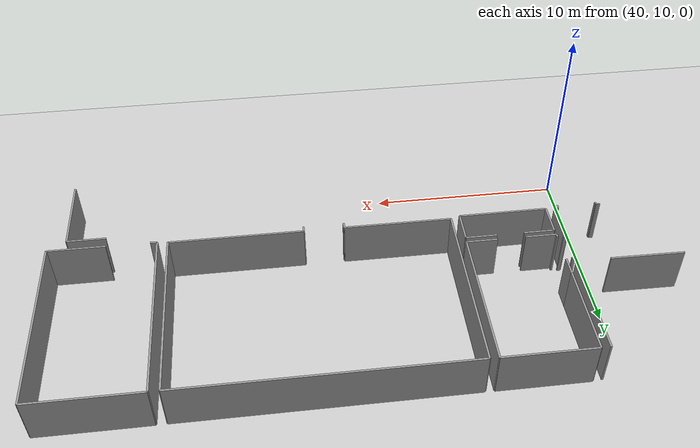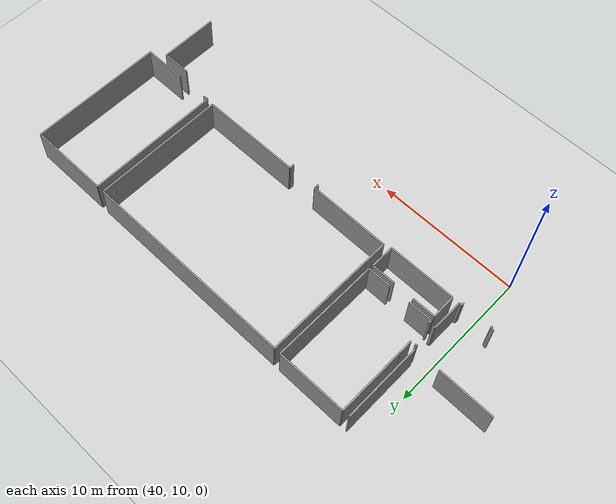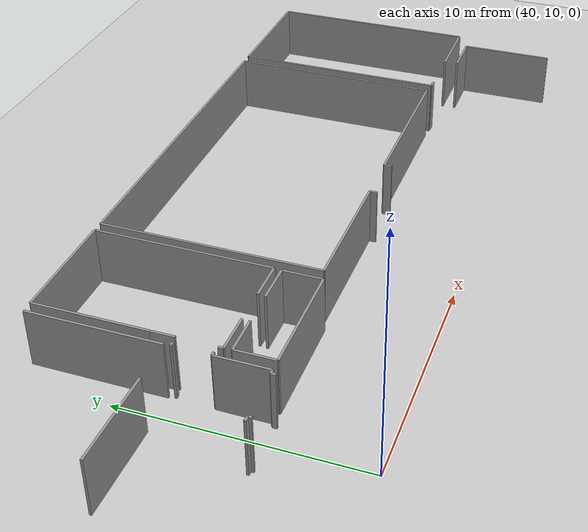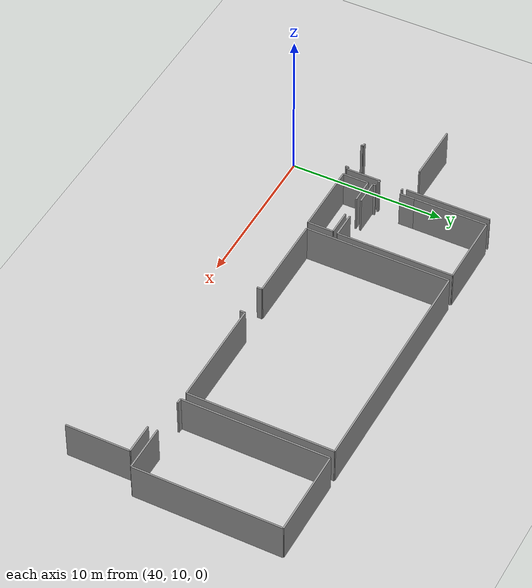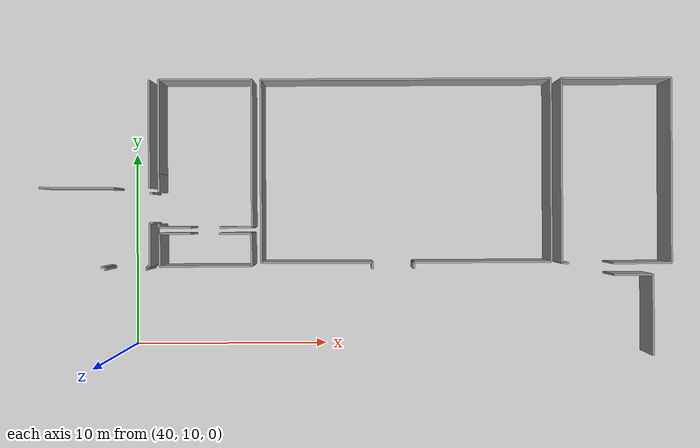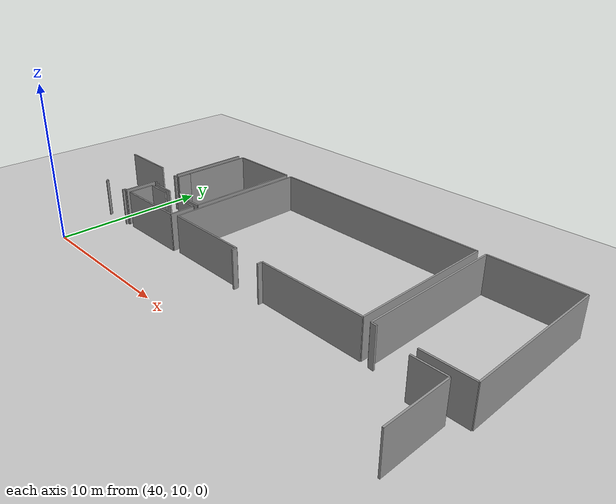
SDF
<sdf version="1.6">
 <world name="default">
  <model name="ground_plane">
   <static>1</static>
   <link name="link">
    <collision name="collision">
     <geometry><plane><normal>0 0 1</normal><size>100 100</size></plane></geometry>
     <surface><friction><ode><mu>100</mu><mu2>50</mu2></ode></friction></surface>
    </collision>
    <visual name="visual">
     <cast_shadows>0</cast_shadows>
     <geometry><plane><normal>0 0 1</normal><size>100 100</size></plane></geometry>
     <material>
      <script><uri>file://media/materials/scripts/gazebo.material</uri><name>Gazebo/Grey</name></script>
     </material>
    </visual>
   </link>
  </model>
  <model name="0510032194_A_40_1_102">
   <static>1</static>
   <link name="Wall_140">
    <collision name="Wall_140_Collision">
     <geometry><box><size>0.159793552324 0.1 2.5</size></box></geometry>
     <pose>0.0798967761619 0 1.25 0 0 0</pose>
    </collision>
    <visual name="Wall_140_Visual">
     <pose>0.0798967761619 0 1.25 0 0 0</pose>
     <geometry><box><size>0.159793552324 0.1 2.5</size></box></geometry>
     <material>
      <script><uri>file://media/materials/scripts/gazebo.material</uri><name>Gazebo/Grey</name></script>
      <ambient>1 1 1 1</ambient>
     </material>
    </visual>
    <pose>108.805044239 -5.91159869826 0 0 0 0.0</pose>
   </link>
   <link name="Wall_141">
    <collision name="Wall_141_Collision">
     <geometry><box><size>0.168183667243 0.1 2.5</size></box></geometry>
     <pose>0.0840918336215 0 1.25 0 0 0</pose>
    </collision>
    <visual name="Wall_141_Visual">
     <pose>0.0840918336215 0 1.25 0 0 0</pose>
     <geometry><box><size>0.168183667243 0.1 2.5</size></box></geometry>
     <material>
      <script><uri>file://media/materials/scripts/gazebo.material</uri><name>Gazebo/Grey</name></script>
      <ambient>1 1 1 1</ambient>
     </material>
    </visual>
    <pose>108.964837791 -7.4520746466 0 0 0 3.14159265359</pose>
   </link>
   <link name="Wall_142">
    <collision name="Wall_142_Collision">
     <geometry><box><size>2.20825282213 0.1 2.5</size></box></geometry>
     <pose>1.10412641106 0 1.25 0 0 0</pose>
    </collision>
    <visual name="Wall_142_Visual">
     <pose>1.10412641106 0 1.25 0 0 0</pose>
     <geometry><box><size>2.20825282213 0.1 2.5</size></box></geometry>
     <material>
      <script><uri>file://media/materials/scripts/gazebo.material</uri><name>Gazebo/Grey</name></script>
      <ambient>1 1 1 1</ambient>
     </material>
    </visual>
    <pose>108.796654124 -7.4520746466 0 0 0 -1.57079632679</pose>
   </link>
   <link name="Wall_143">
    <collision name="Wall_143_Collision">
     <geometry><box><size>0.172632970609 0.1 2.5</size></box></geometry>
     <pose>0.0863164853046 0 1.25 0 0 0</pose>
    </collision>
    <visual name="Wall_143_Visual">
     <pose>0.0863164853046 0 1.25 0 0 0</pose>
     <geometry><box><size>0.172632970609 0.1 2.5</size></box></geometry>
     <material>
      <script><uri>file://media/materials/scripts/gazebo.material</uri><name>Gazebo/Grey</name></script>
      <ambient>1 1 1 1</ambient>
     </material>
    </visual>
    <pose>108.796654124 -9.66032746873 0 0 0 3.14159265359</pose>
   </link>
   <link name="Wall_144">
    <collision name="Wall_144_Collision">
     <geometry><box><size>0.192209905421 0.1 2.5</size></box></geometry>
     <pose>0.0961049527103 0 1.25 0 0 0</pose>
    </collision>
    <visual name="Wall_144_Visual">
     <pose>0.0961049527103 0 1.25 0 0 0</pose>
     <geometry><box><size>0.192209905421 0.1 2.5</size></box></geometry>
     <material>
      <script><uri>file://media/materials/scripts/gazebo.material</uri><name>Gazebo/Grey</name></script>
      <ambient>1 1 1 1</ambient>
     </material>
    </visual>
    <pose>108.624021153 -9.66032746873 0 0 0 -1.57079632679</pose>
   </link>
   <link name="Wall_145">
    <collision name="Wall_145_Collision">
     <geometry><box><size>0.140852232279 0.1 2.5</size></box></geometry>
     <pose>0.0704261161395 0 1.25 0 0 0</pose>
    </collision>
    <visual name="Wall_145_Visual">
     <pose>0.0704261161395 0 1.25 0 0 0</pose>
     <geometry><box><size>0.140852232279 0.1 2.5</size></box></geometry>
     <material>
      <script><uri>file://media/materials/scripts/gazebo.material</uri><name>Gazebo/Grey</name></script>
      <ambient>1 1 1 1</ambient>
     </material>
    </visual>
    <pose>106.518865046 -9.85253737415 0 0 0 1.57079632679</pose>
   </link>
   <link name="Wall_146">
    <collision name="Wall_146_Collision">
     <geometry><box><size>0.214822370318 0.1 2.5</size></box></geometry>
     <pose>0.107411185159 0 1.25 0 0 0</pose>
    </collision>
    <visual name="Wall_146_Visual">
     <pose>0.107411185159 0 1.25 0 0 0</pose>
     <geometry><box><size>0.214822370318 0.1 2.5</size></box></geometry>
     <material>
      <script><uri>file://media/materials/scripts/gazebo.material</uri><name>Gazebo/Grey</name></script>
      <ambient>1 1 1 1</ambient>
     </material>
    </visual>
    <pose>106.518865046 -9.71168514187 0 0 0 3.03903877093</pose>
   </link>
   <link name="Wall_147">
    <collision name="Wall_147_Collision">
     <geometry><box><size>9.33692667548 0.1 2.5</size></box></geometry>
     <pose>4.66846333774 0 1.25 0 0 0</pose>
    </collision>
    <visual name="Wall_147_Visual">
     <pose>4.66846333774 0 1.25 0 0 0</pose>
     <geometry><box><size>9.33692667548 0.1 2.5</size></box></geometry>
     <material>
      <script><uri>file://media/materials/scripts/gazebo.material</uri><name>Gazebo/Grey</name></script>
      <ambient>1 1 1 1</ambient>
     </material>
    </visual>
    <pose>114.472821113 -9.49405064578 0 0 0 1.57079632679</pose>
   </link>
   <link name="Wall_148">
    <collision name="Wall_148_Collision">
     <geometry><box><size>14.798382996 0.1 2.5</size></box></geometry>
     <pose>7.39919149802 0 1.25 0 0 0</pose>
    </collision>
    <visual name="Wall_148_Visual">
     <pose>7.39919149802 0 1.25 0 0 0</pose>
     <geometry><box><size>14.798382996 0.1 2.5</size></box></geometry>
     <material>
      <script><uri>file://media/materials/scripts/gazebo.material</uri><name>Gazebo/Grey</name></script>
      <ambient>1 1 1 1</ambient>
     </material>
    </visual>
    <pose>114.472821113 -0.157123970304 0 0 0 0.0</pose>
   </link>
   <link name="Wall_149">
    <collision name="Wall_149_Collision">
     <geometry><box><size>9.33476558527 0.1 2.5</size></box></geometry>
     <pose>4.66738279264 0 1.25 0 0 0</pose>
    </collision>
    <visual name="Wall_149_Visual">
     <pose>4.66738279264 0 1.25 0 0 0</pose>
     <geometry><box><size>9.33476558527 0.1 2.5</size></box></geometry>
     <material>
      <script><uri>file://media/materials/scripts/gazebo.material</uri><name>Gazebo/Grey</name></script>
      <ambient>1 1 1 1</ambient>
     </material>
    </visual>
    <pose>129.271204109 -0.157123970304 0 0 0 -1.57079632679</pose>
   </link>
   <link name="Wall_150">
    <collision name="Wall_150_Collision">
     <geometry><box><size>7.00828841656 0.1 2.5</size></box></geometry>
     <pose>3.50414420828 0 1.25 0 0 0</pose>
    </collision>
    <visual name="Wall_150_Visual">
     <pose>3.50414420828 0 1.25 0 0 0</pose>
     <geometry><box><size>7.00828841656 0.1 2.5</size></box></geometry>
     <material>
      <script><uri>file://media/materials/scripts/gazebo.material</uri><name>Gazebo/Grey</name></script>
      <ambient>1 1 1 1</ambient>
     </material>
    </visual>
    <pose>129.271204109 -9.49188955558 0 0 0 3.14159265359</pose>
   </link>
   <link name="Wall_151">
    <collision name="Wall_151_Collision">
     <geometry><box><size>0.339291162412 0.1 2.5</size></box></geometry>
     <pose>0.169645581206 0 1.25 0 0 0</pose>
    </collision>
    <visual name="Wall_151_Visual">
     <pose>0.169645581206 0 1.25 0 0 0</pose>
     <geometry><box><size>0.339291162412 0.1 2.5</size></box></geometry>
     <material>
      <script><uri>file://media/materials/scripts/gazebo.material</uri><name>Gazebo/Grey</name></script>
      <ambient>1 1 1 1</ambient>
     </material>
    </visual>
    <pose>122.262915692 -9.49188955558 0 0 0 -1.57079632679</pose>
   </link>
   <link name="Wall_152">
    <collision name="Wall_152_Collision">
     <geometry><box><size>0.324417776874 0.1 2.5</size></box></geometry>
     <pose>0.162208888437 0 1.25 0 0 0</pose>
    </collision>
    <visual name="Wall_152_Visual">
     <pose>0.162208888437 0 1.25 0 0 0</pose>
     <geometry><box><size>0.324417776874 0.1 2.5</size></box></geometry>
     <material>
      <script><uri>file://media/materials/scripts/gazebo.material</uri><name>Gazebo/Grey</name></script>
      <ambient>1 1 1 1</ambient>
     </material>
    </visual>
    <pose>120.142504831 -9.83118071799 0 0 0 1.57079632679</pose>
   </link>
   <link name="Wall_153">
    <collision name="Wall_153_Collision">
     <geometry><box><size>5.66969796953 0.1 2.5</size></box></geometry>
     <pose>2.83484898476 0 1.25 0 0 0</pose>
    </collision>
    <visual name="Wall_153_Visual">
     <pose>2.83484898476 0 1.25 0 0 0</pose>
     <geometry><box><size>5.66969796953 0.1 2.5</size></box></geometry>
     <material>
      <script><uri>file://media/materials/scripts/gazebo.material</uri><name>Gazebo/Grey</name></script>
      <ambient>1 1 1 1</ambient>
     </material>
    </visual>
    <pose>120.142504831 -9.50676294112 0 0 0 3.13935050488</pose>
   </link>
   <link name="Wall_154">
    <collision name="Wall_154_Collision">
     <geometry><box><size>9.40506457846 0.1 2.5</size></box></geometry>
     <pose>4.70253228923 0 1.25 0 0 0</pose>
    </collision>
    <visual name="Wall_154_Visual">
     <pose>4.70253228923 0 1.25 0 0 0</pose>
     <geometry><box><size>9.40506457846 0.1 2.5</size></box></geometry>
     <material>
      <script><uri>file://media/materials/scripts/gazebo.material</uri><name>Gazebo/Grey</name></script>
      <ambient>1 1 1 1</ambient>
     </material>
    </visual>
    <pose>129.810205431 -9.55723075358 0 0 0 1.57079632679</pose>
   </link>
   <link name="Wall_155">
    <collision name="Wall_155_Collision">
     <geometry><box><size>5.59213871657 0.1 2.5</size></box></geometry>
     <pose>2.79606935828 0 1.25 0 0 0</pose>
    </collision>
    <visual name="Wall_155_Visual">
     <pose>2.79606935828 0 1.25 0 0 0</pose>
     <geometry><box><size>5.59213871657 0.1 2.5</size></box></geometry>
     <material>
      <script><uri>file://media/materials/scripts/gazebo.material</uri><name>Gazebo/Grey</name></script>
      <ambient>1 1 1 1</ambient>
     </material>
    </visual>
    <pose>129.810205431 -0.152166175125 0 0 0 0.0</pose>
   </link>
   <link name="Wall_156">
    <collision name="Wall_156_Collision">
     <geometry><box><size>9.4275653412 0.1 2.5</size></box></geometry>
     <pose>4.7137826706 0 1.25 0 0 0</pose>
    </collision>
    <visual name="Wall_156_Visual">
     <pose>4.7137826706 0 1.25 0 0 0</pose>
     <geometry><box><size>9.4275653412 0.1 2.5</size></box></geometry>
     <material>
      <script><uri>file://media/materials/scripts/gazebo.material</uri><name>Gazebo/Grey</name></script>
      <ambient>1 1 1 1</ambient>
     </material>
    </visual>
    <pose>135.402344147 -0.152166175125 0 0 0 -1.57079632679</pose>
   </link>
   <link name="Wall_157">
    <collision name="Wall_157_Collision">
     <geometry><box><size>2.9861181735 0.1 2.5</size></box></geometry>
     <pose>1.49305908675 0 1.25 0 0 0</pose>
    </collision>
    <visual name="Wall_157_Visual">
     <pose>1.49305908675 0 1.25 0 0 0</pose>
     <geometry><box><size>2.9861181735 0.1 2.5</size></box></geometry>
     <material>
      <script><uri>file://media/materials/scripts/gazebo.material</uri><name>Gazebo/Grey</name></script>
      <ambient>1 1 1 1</ambient>
     </material>
    </visual>
    <pose>135.402344147 -9.57973151632 0 0 0 3.14159265359</pose>
   </link>
   <link name="Wall_158">
    <collision name="Wall_158_Collision">
     <geometry><box><size>0.346505761658 0.1 2.5</size></box></geometry>
     <pose>0.173252880829 0 1.25 0 0 0</pose>
    </collision>
    <visual name="Wall_158_Visual">
     <pose>0.173252880829 0 1.25 0 0 0</pose>
     <geometry><box><size>0.346505761658 0.1 2.5</size></box></geometry>
     <material>
      <script><uri>file://media/materials/scripts/gazebo.material</uri><name>Gazebo/Grey</name></script>
      <ambient>1 1 1 1</ambient>
     </material>
    </visual>
    <pose>130.155979864 -9.57973151632 0 0 0 3.07661074419</pose>
   </link>
   <link name="Wall_221">
    <collision name="Wall_221_Collision">
     <geometry><box><size>1.9983728262 0.1 2.5</size></box></geometry>
     <pose>0.999186413099 0 1.25 0 0 0</pose>
    </collision>
    <visual name="Wall_221_Visual">
     <pose>0.999186413099 0 1.25 0 0 0</pose>
     <geometry><box><size>1.9983728262 0.1 2.5</size></box></geometry>
     <material>
      <script><uri>file://media/materials/scripts/gazebo.material</uri><name>Gazebo/Grey</name></script>
      <ambient>1 1 1 1</ambient>
     </material>
    </visual>
    <pose>132.449277942 -10.176955151 0 0 0 0.0</pose>
   </link>
   <link name="Wall_222">
    <collision name="Wall_222_Collision">
     <geometry><box><size>4.13378419607 0.1 2.5</size></box></geometry>
     <pose>2.06689209804 0 1.25 0 0 0</pose>
    </collision>
    <visual name="Wall_222_Visual">
     <pose>2.06689209804 0 1.25 0 0 0</pose>
     <geometry><box><size>4.13378419607 0.1 2.5</size></box></geometry>
     <material>
      <script><uri>file://media/materials/scripts/gazebo.material</uri><name>Gazebo/Grey</name></script>
      <ambient>1 1 1 1</ambient>
     </material>
    </visual>
    <pose>134.447650768 -10.176955151 0 0 0 -1.57079632679</pose>
   </link>
   <link name="Wall_244">
    <collision name="Wall_244_Collision">
     <geometry><box><size>5.51573782162 0.1 2.5</size></box></geometry>
     <pose>2.75786891081 0 1.25 0 0 0</pose>
    </collision>
    <visual name="Wall_244_Visual">
     <pose>2.75786891081 0 1.25 0 0 0</pose>
     <geometry><box><size>5.51573782162 0.1 2.5</size></box></geometry>
     <material>
      <script><uri>file://media/materials/scripts/gazebo.material</uri><name>Gazebo/Grey</name></script>
      <ambient>1 1 1 1</ambient>
     </material>
    </visual>
    <pose>108.777839927 -0.146064273365 0 0 0 -1.57079632679</pose>
   </link>
   <link name="Wall_245">
    <collision name="Wall_245_Collision">
     <geometry><box><size>3.86283849689 0.1 2.5</size></box></geometry>
     <pose>1.93141924844 0 1.25 0 0 0</pose>
    </collision>
    <visual name="Wall_245_Visual">
     <pose>1.93141924844 0 1.25 0 0 0</pose>
     <geometry><box><size>3.86283849689 0.1 2.5</size></box></geometry>
     <material>
      <script><uri>file://media/materials/scripts/gazebo.material</uri><name>Gazebo/Grey</name></script>
      <ambient>1 1 1 1</ambient>
     </material>
    </visual>
    <pose>107.002440761 -5.66180209499 0 0 0 3.13122606758</pose>
   </link>
   <link name="Wall_246">
    <collision name="Wall_246_Collision">
     <geometry><box><size>4.76380555273 0.1 2.5</size></box></geometry>
     <pose>2.38190277637 0 1.25 0 0 0</pose>
    </collision>
    <visual name="Wall_246_Visual">
     <pose>2.38190277637 0 1.25 0 0 0</pose>
     <geometry><box><size>4.76380555273 0.1 2.5</size></box></geometry>
     <material>
      <script><uri>file://media/materials/scripts/gazebo.material</uri><name>Gazebo/Grey</name></script>
      <ambient>1 1 1 1</ambient>
     </material>
    </visual>
    <pose>109.254423879 -4.9098698261 0 0 0 1.57079632679</pose>
   </link>
   <link name="Wall_247">
    <collision name="Wall_247_Collision">
     <geometry><box><size>4.75821214278 0.1 2.5</size></box></geometry>
     <pose>2.37910607139 0 1.25 0 0 0</pose>
    </collision>
    <visual name="Wall_247_Visual">
     <pose>2.37910607139 0 1.25 0 0 0</pose>
     <geometry><box><size>4.75821214278 0.1 2.5</size></box></geometry>
     <material>
      <script><uri>file://media/materials/scripts/gazebo.material</uri><name>Gazebo/Grey</name></script>
      <ambient>1 1 1 1</ambient>
     </material>
    </visual>
    <pose>109.254423879 -0.146064273365 0 0 0 0.0</pose>
   </link>
   <link name="Wall_248">
    <collision name="Wall_248_Collision">
     <geometry><box><size>7.53419607444 0.1 2.5</size></box></geometry>
     <pose>3.76709803722 0 1.25 0 0 0</pose>
    </collision>
    <visual name="Wall_248_Visual">
     <pose>3.76709803722 0 1.25 0 0 0</pose>
     <geometry><box><size>7.53419607444 0.1 2.5</size></box></geometry>
     <material>
      <script><uri>file://media/materials/scripts/gazebo.material</uri><name>Gazebo/Grey</name></script>
      <ambient>1 1 1 1</ambient>
     </material>
    </visual>
    <pose>114.012636022 -0.146064273365 0 0 0 -1.57079632679</pose>
   </link>
   <link name="Wall_249">
    <collision name="Wall_249_Collision">
     <geometry><box><size>1.63988609783 0.1 2.5</size></box></geometry>
     <pose>0.819943048917 0 1.25 0 0 0</pose>
    </collision>
    <visual name="Wall_249_Visual">
     <pose>0.819943048917 0 1.25 0 0 0</pose>
     <geometry><box><size>1.63988609783 0.1 2.5</size></box></geometry>
     <material>
      <script><uri>file://media/materials/scripts/gazebo.material</uri><name>Gazebo/Grey</name></script>
      <ambient>1 1 1 1</ambient>
     </material>
    </visual>
    <pose>114.012636022 -7.68026034781 0 0 0 3.14159265359</pose>
   </link>
   <link name="Wall_250">
    <collision name="Wall_250_Collision">
     <geometry><box><size>1.64344554053 0.1 2.5</size></box></geometry>
     <pose>0.821722770263 0 1.25 0 0 0</pose>
    </collision>
    <visual name="Wall_250_Visual">
     <pose>0.821722770263 0 1.25 0 0 0</pose>
     <geometry><box><size>1.64344554053 0.1 2.5</size></box></geometry>
     <material>
      <script><uri>file://media/materials/scripts/gazebo.material</uri><name>Gazebo/Grey</name></script>
      <ambient>1 1 1 1</ambient>
     </material>
    </visual>
    <pose>110.901937354 -7.68026034781 0 0 0 3.14159265359</pose>
   </link>
   <link name="Wall_251">
    <collision name="Wall_251_Collision">
     <geometry><box><size>0.201871249873 0.1 2.5</size></box></geometry>
     <pose>0.100935624936 0 1.25 0 0 0</pose>
    </collision>
    <visual name="Wall_251_Visual">
     <pose>0.100935624936 0 1.25 0 0 0</pose>
     <geometry><box><size>0.201871249873 0.1 2.5</size></box></geometry>
     <material>
      <script><uri>file://media/materials/scripts/gazebo.material</uri><name>Gazebo/Grey</name></script>
      <ambient>1 1 1 1</ambient>
     </material>
    </visual>
    <pose>109.258491813 -7.68026034781 0 0 0 1.57079632679</pose>
   </link>
   <link name="Wall_252">
    <collision name="Wall_252_Collision">
     <geometry><box><size>0.96232935461 0.1 2.5</size></box></geometry>
     <pose>0.481164677305 0 1.25 0 0 0</pose>
    </collision>
    <visual name="Wall_252_Visual">
     <pose>0.481164677305 0 1.25 0 0 0</pose>
     <geometry><box><size>0.96232935461 0.1 2.5</size></box></geometry>
     <material>
      <script><uri>file://media/materials/scripts/gazebo.material</uri><name>Gazebo/Grey</name></script>
      <ambient>1 1 1 1</ambient>
     </material>
    </visual>
    <pose>109.258491813 -5.87219058273 0 0 0 1.5750235143</pose>
   </link>
   <link name="Wall_258">
    <collision name="Wall_258_Collision">
     <geometry><box><size>1.66848876233 0.1 2.5</size></box></geometry>
     <pose>0.834244381165 0 1.25 0 0 0</pose>
    </collision>
    <visual name="Wall_258_Visual">
     <pose>0.834244381165 0 1.25 0 0 0</pose>
     <geometry><box><size>1.66848876233 0.1 2.5</size></box></geometry>
     <material>
      <script><uri>file://media/materials/scripts/gazebo.material</uri><name>Gazebo/Grey</name></script>
      <ambient>1 1 1 1</ambient>
     </material>
    </visual>
    <pose>109.292560765 -9.66375978847 0 0 0 1.57079632679</pose>
   </link>
   <link name="Wall_259">
    <collision name="Wall_259_Collision">
     <geometry><box><size>1.60174921184 0.1 2.5</size></box></geometry>
     <pose>0.800874605919 0 1.25 0 0 0</pose>
    </collision>
    <visual name="Wall_259_Visual">
     <pose>0.800874605919 0 1.25 0 0 0</pose>
     <geometry><box><size>1.60174921184 0.1 2.5</size></box></geometry>
     <material>
      <script><uri>file://media/materials/scripts/gazebo.material</uri><name>Gazebo/Grey</name></script>
      <ambient>1 1 1 1</ambient>
     </material>
    </visual>
    <pose>109.292560765 -7.99527102614 0 0 0 0.0</pose>
   </link>
   <link name="Wall_260">
    <collision name="Wall_260_Collision">
     <geometry><box><size>1.6462422455 0.1 2.5</size></box></geometry>
     <pose>0.82312112275 0 1.25 0 0 0</pose>
    </collision>
    <visual name="Wall_260_Visual">
     <pose>0.82312112275 0 1.25 0 0 0</pose>
     <geometry><box><size>1.6462422455 0.1 2.5</size></box></geometry>
     <material>
      <script><uri>file://media/materials/scripts/gazebo.material</uri><name>Gazebo/Grey</name></script>
      <ambient>1 1 1 1</ambient>
     </material>
    </visual>
    <pose>112.332070579 -7.99527102614 0 0 0 0.0</pose>
   </link>
   <link name="Wall_261">
    <collision name="Wall_261_Collision">
     <geometry><box><size>1.65653920472 0.1 2.5</size></box></geometry>
     <pose>0.828269602359 0 1.25 0 0 0</pose>
    </collision>
    <visual name="Wall_261_Visual">
     <pose>0.828269602359 0 1.25 0 0 0</pose>
     <geometry><box><size>1.65653920472 0.1 2.5</size></box></geometry>
     <material>
      <script><uri>file://media/materials/scripts/gazebo.material</uri><name>Gazebo/Grey</name></script>
      <ambient>1 1 1 1</ambient>
     </material>
    </visual>
    <pose>113.978312824 -7.99527102614 0 0 0 -1.57079632679</pose>
   </link>
   <link name="Wall_262">
    <collision name="Wall_262_Collision">
     <geometry><box><size>4.68576729619 0.1 2.5</size></box></geometry>
     <pose>2.34288364809 0 1.25 0 0 0</pose>
    </collision>
    <visual name="Wall_262_Visual">
     <pose>2.34288364809 0 1.25 0 0 0</pose>
     <geometry><box><size>4.68576729619 0.1 2.5</size></box></geometry>
     <material>
      <script><uri>file://media/materials/scripts/gazebo.material</uri><name>Gazebo/Grey</name></script>
      <ambient>1 1 1 1</ambient>
     </material>
    </visual>
    <pose>113.978312824 -9.65181023086 0 0 0 -3.13904246921</pose>
   </link>
   <pose>-67.7 23.8502186515 0 0 0 0</pose>
  </model>
 </world>
</sdf>
